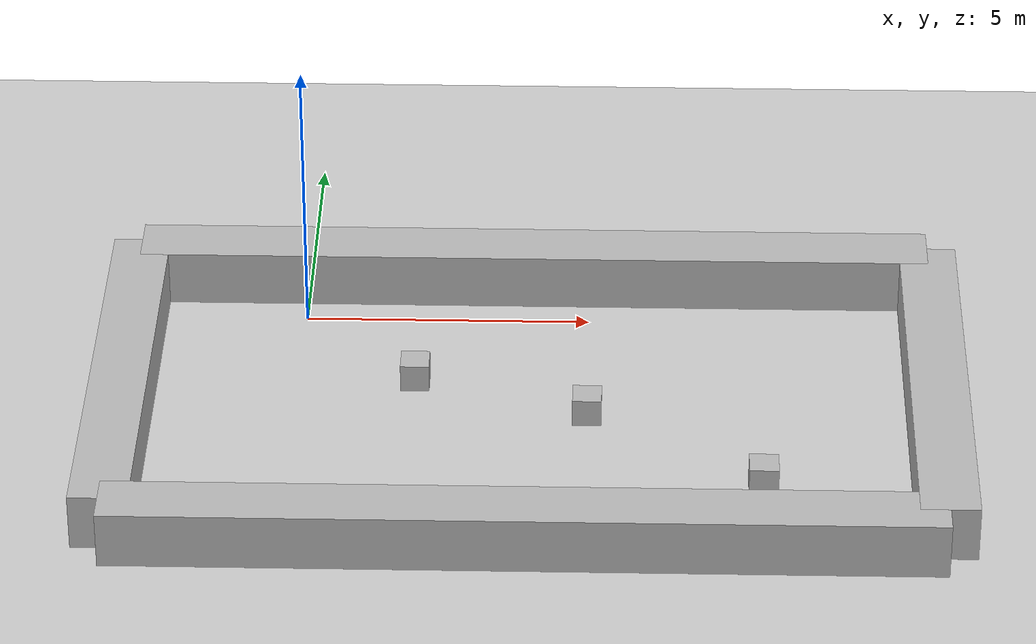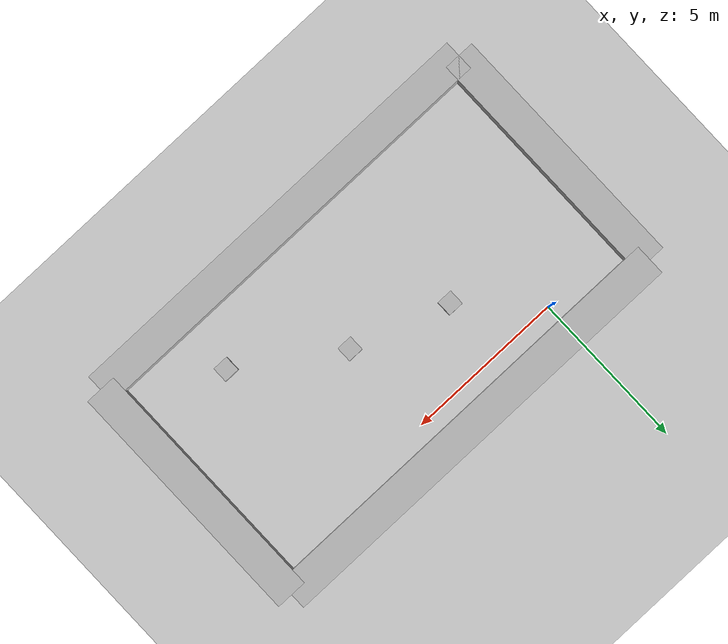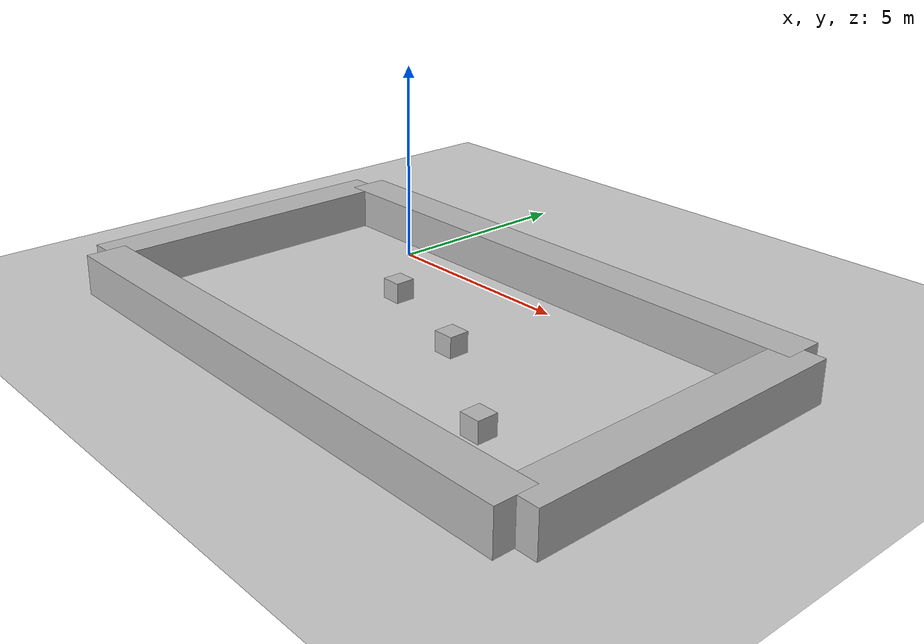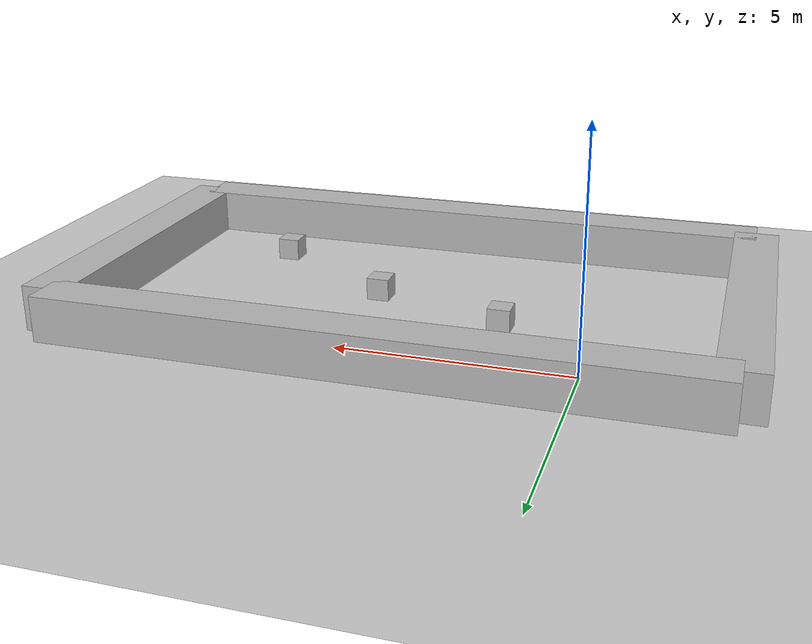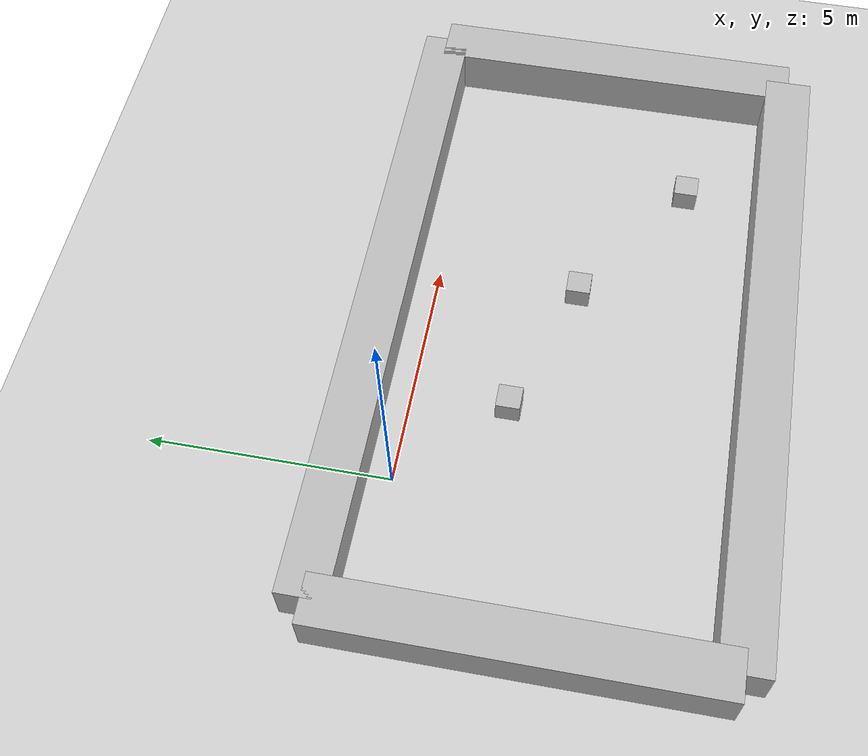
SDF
<sdf version='1.10'>
  <world name='empty'>
    <physics name='1ms' type='ignored'>
      <max_step_size>0.001</max_step_size>
      <real_time_factor>1</real_time_factor>
      <real_time_update_rate>1000</real_time_update_rate>
    </physics>
    <plugin name='gz::sim::systems::Physics' filename='gz-sim-physics-system'/>
    <plugin name='gz::sim::systems::UserCommands' filename='gz-sim-user-commands-system'/>
    <plugin name='gz::sim::systems::SceneBroadcaster' filename='gz-sim-scene-broadcaster-system'/>
    <plugin name='gz::sim::systems::Sensors' filename='gz-sim-sensors-system'>
      <render_engine>ogre2</render_engine>
    </plugin>
    <plugin name='gz::sim::systems::Contact' filename='gz-sim-contact-system'/>
    <gravity>0 0 -9.8000000000000007</gravity>
    <magnetic_field>5.5644999999999998e-06 2.2875799999999999e-05 -4.2388400000000002e-05</magnetic_field>
    <atmosphere type='adiabatic'/>
    <scene>
      <ambient>0.400000006 0.400000006 0.400000006 1</ambient>
      <background>0.699999988 0.699999988 0.699999988 1</background>
      <shadows>true</shadows>
    </scene>
    <model name='ground_plane'>
      <static>true</static>
      <link name='link'>
        <collision name='collision'>
          <geometry>
            <plane>
              <normal>0 0 1</normal>
              <size>100 100</size>
            </plane>
          </geometry>
          <surface>
            <friction>
              <ode>
                <mu>100</mu>
                <mu2>100</mu2>
              </ode>
            </friction>
            <bounce/>
            <contact/>
          </surface>
        </collision>
        <visual name='visual'>
          <geometry>
            <plane>
              <normal>0 0 1</normal>
              <size>100 100</size>
            </plane>
          </geometry>
          <material>
            <ambient>0.800000012 0.800000012 0.800000012 1</ambient>
            <diffuse>0.800000012 0.800000012 0.800000012 1</diffuse>
            <specular>0.800000012 0.800000012 0.800000012 1</specular>
          </material>
        </visual>
        <pose>0 0 0 0 0 0</pose>
        <inertial>
          <pose>0 0 0 0 0 0</pose>
          <mass>1</mass>
          <inertia>
            <ixx>1</ixx>
            <ixy>0</ixy>
            <ixz>0</ixz>
            <iyy>1</iyy>
            <iyz>0</iyz>
            <izz>1</izz>
          </inertia>
        </inertial>
        <enable_wind>false</enable_wind>
      </link>
      <pose>0 0 0 0 0 0</pose>
      <self_collide>false</self_collide>
    </model>
    <model name="wall_top">
      <pose>4 1 0.5 0 0 0</pose> <!-- center between -3 and 11 is (4, 1) -->
      <link name="link">
        <collision name="collision">
          <geometry><box><size>14 1 1</size></box></geometry>
        </collision>
        <visual name="visual">
          <geometry><box><size>14 1 1</size></box></geometry>
        </visual>
      </link>
      <static>true</static>
    </model>
    <model name="wall_bottom">
      <pose>4 -7 0.5 0 0 0</pose>
      <link name="link">
        <collision name="collision">
          <geometry><box><size>14 1 1</size></box></geometry>
        </collision>
        <visual name="visual">
          <geometry><box><size>14 1 1</size></box></geometry>
        </visual>
      </link>
      <static>true</static>
    </model>
    <model name="wall_left">
      <pose>-3 -3 0.5 0 0 0</pose>
      <link name="link">
        <collision name="collision">
          <geometry><box><size>1 8 1</size></box></geometry>
        </collision>
        <visual name="visual">
          <geometry><box><size>1 8 1</size></box></geometry>
        </visual>
      </link>
      <static>true</static>
    </model>

    <model name="wall_right">
      <pose>11 -3 0.5 0 0 0</pose>
      <link name="link">
        <collision name="collision">
          <geometry><box><size>1 8 1</size></box></geometry>
        </collision>
        <visual name="visual">
          <geometry><box><size>1 8 1</size></box></geometry>
        </visual>
      </link>
      <static>true</static>
    </model>

    <model name='moving_box_1'>
      <static>false</static>
      <pose>2 -2 0.24999999997243758 4.4051979816434719e-22 2.2861681299547203e-21 -2.0617774592988237e-23</pose>
      <link name='link'>
        <collision name='collision'>
          <geometry>
            <box>
              <size>0.5 0.5 0.5</size>
            </box>
          </geometry>
          <surface>
            <friction>
              <ode/>
            </friction>
            <bounce/>
            <contact/>
          </surface>
        </collision>
        <visual name='visual'>
          <geometry>
            <box>
              <size>0.5 0.5 0.5</size>
            </box>
          </geometry>
        </visual>
        <pose>0 0 0 0 0 0</pose>
        <inertial>
          <pose>0 0 0 0 0 0</pose>
          <mass>1</mass>
          <inertia>
            <ixx>1</ixx>
            <ixy>0</ixy>
            <ixz>0</ixz>
            <iyy>1</iyy>
            <iyz>0</iyz>
            <izz>1</izz>
          </inertia>
        </inertial>
        <enable_wind>false</enable_wind>
      </link>
      <self_collide>false</self_collide>
    </model>
    <model name='moving_box_2'>
      <static>false</static>
      <pose>5 -3 0.24999999997243758 4.4051979816434719e-22 2.2861681299547203e-21 -2.0617774592988237e-23</pose>
      <link name='link'>
        <collision name='collision'>
          <geometry>
            <box>
              <size>0.5 0.5 0.5</size>
            </box>
          </geometry>
          <surface>
            <friction>
              <ode/>
            </friction>
            <bounce/>
            <contact/>
          </surface>
        </collision>
        <visual name='visual'>
          <geometry>
            <box>
              <size>0.5 0.5 0.5</size>
            </box>
          </geometry>
        </visual>
        <pose>0 0 0 0 0 0</pose>
        <inertial>
          <pose>0 0 0 0 0 0</pose>
          <mass>1</mass>
          <inertia>
            <ixx>1</ixx>
            <ixy>0</ixy>
            <ixz>0</ixz>
            <iyy>1</iyy>
            <iyz>0</iyz>
            <izz>1</izz>
          </inertia>
        </inertial>
        <enable_wind>false</enable_wind>
      </link>
      <self_collide>false</self_collide>
    </model>
    <model name='moving_box_3'>
      <static>false</static>
      <pose>8 -5 0.24999999997243758 4.4051979816434719e-22 2.2861681299547203e-21 -2.0617774592988237e-23</pose>
      <link name='link'>
        <collision name='collision'>
          <geometry>
            <box>
              <size>0.5 0.5 0.5</size>
            </box>
          </geometry>
          <surface>
            <friction>
              <ode/>
            </friction>
            <bounce/>
            <contact/>
          </surface>
        </collision>
        <visual name='visual'>
          <geometry>
            <box>
              <size>0.5 0.5 0.5</size>
            </box>
          </geometry>
        </visual>
        <pose>0 0 0 0 0 0</pose>
        <inertial>
          <pose>0 0 0 0 0 0</pose>
          <mass>1</mass>
          <inertia>
            <ixx>1</ixx>
            <ixy>0</ixy>
            <ixz>0</ixz>
            <iyy>1</iyy>
            <iyz>0</iyz>
            <izz>1</izz>
          </inertia>
        </inertial>
        <enable_wind>false</enable_wind>
      </link>
      <self_collide>false</self_collide>
    </model>
    <light name='sun' type='directional'>
      <pose>0 0 10 0 0 0</pose>
      <cast_shadows>true</cast_shadows>
      <intensity>1</intensity>
      <direction>-0.5 0.10000000000000001 -0.90000000000000002</direction>
      <diffuse>0.800000012 0.800000012 0.800000012 1</diffuse>
      <specular>0.200000003 0.200000003 0.200000003 1</specular>
      <attenuation>
        <range>1000</range>
        <linear>0.01</linear>
        <constant>0.90000000000000002</constant>
        <quadratic>0.001</quadratic>
      </attenuation>
      <spot>
        <inner_angle>0</inner_angle>
        <outer_angle>0</outer_angle>
        <falloff>0</falloff>
      </spot>
    </light>
  </world>
</sdf>
